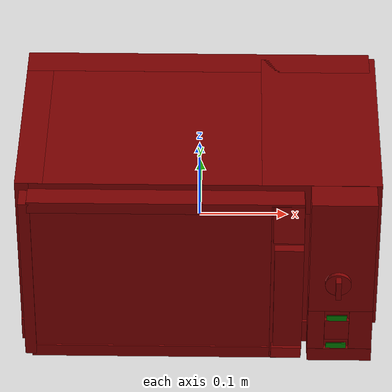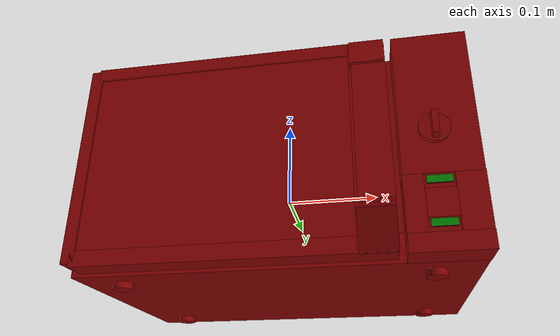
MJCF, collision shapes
<?xml version='1.0' encoding='UTF-8'?>
<mujoco model="model">
  <option timestep="0.002" gravity="0.0 0.0 -9.81"/>
  <compiler angle="radian"/>
  <asset>
    <mesh file="visuals/door.obj" name="door_vis"/>
    <mesh file="visuals/door_Clear.obj" name="door_Clear_vis"/>
    <mesh file="visuals/Body001.obj" name="Body001_vis"/>
    <mesh file="visuals/Button001.obj" name="Button001_vis"/>
    <mesh file="visuals/Button002.obj" name="Button002_vis"/>
    <mesh file="visuals/Disc001.obj" name="Disc001_vis"/>
    <mesh file="visuals/Knob001.obj" name="Knob001_vis"/>
    <texture file="visuals/T_BC001.png" name="Body001_material" type="2d"/>
    <material name="Body001_material" rgba="1 1 1 1.0" texture="Body001_material" shininess="3" specular="3"/>
    <texture file="visuals/T_BC001.png" name="door_material" type="2d"/>
    <material name="door_material" rgba="1 1 1 1.0" texture="door_material" shininess="0.4472135901451111" specular="0.3103448502657381"/>
    <material name="door_Clear_material" rgba="0.013285629451274872 0.013285629451274872 0.013285629451274872 0.800000011920929" shininess="0.5" specular="0.3103448502657381"/>
    <texture file="visuals/T_BC001.png" name="Button001_material" type="2d"/>
    <material name="Button001_material" rgba="1 1 1 1.0" texture="Button001_material" shininess="1" specular="1"/>
    <texture file="visuals/T_BC001.png" name="Button002_material" type="2d"/>
    <material name="Button002_material" rgba="1 1 1 1.0" texture="Button002_material" shininess="1" specular="1"/>
    <texture file="visuals/T_BC001.png" name="Disc001_material" type="2d"/>
    <material name="Disc001_material" rgba="1 1 1 1.0" texture="Disc001_material" shininess="0.4472135901451111" specular="0.3103448502657381"/>
    <texture file="visuals/T_BC001.png" name="Knob001_material" type="2d"/>
    <material name="Knob001_material" rgba="1 1 1 1.0" texture="Knob001_material" shininess="1" specular="1"/>
  </asset>
  <default>
    <default class="visual">
      <geom conaffinity="0" contype="0" group="1" type="mesh"/>
    </default>
    <default class="collision">
      <geom group="0" rgba="0.5 0 0 0.5"/>
    </default>
    <default class="spawn">
      <geom group="0" rgba="1 1 1 0.5" contype="0" conaffinity="0"/>
      <site group="0" rgba="1 1 1 0.5"/>
    </default>
    <default class="region">
      <geom group="1" conaffinity="0" contype="0" rgba="0 1 0 0"/>
    </default>
  </default>
  <worldbody>
    <body>
      <body name="object">
        <geom class="collision" type="cylinder" pos="-0.05001984164118767 0.015951599925756454 -0.06026212126016617" size="0.07823978364467621 0.003583983751013875" quat="1.0 0.0 0.0 0.0" name="tray" rgba="0 1 0 0.5" density="1000.0"/>
        <geom class="collision" type="box" pos="0.15466167032718658 -0.13294266164302826 -0.04180934280157089" size="0.011302554979920387 0.0005325727979652584 0.003456277772784233" quat="1.0 0.0 0.0 0.0" name="start_button" rgba="0.0 0.5 0 0.5" density="1000.0"/>
        <geom class="collision" type="box" pos="0.15466167032718658 -0.13294266164302826 -0.08195394277572632" size="0.011302554979920387 0.0005325728561729193 0.003456277772784233" quat="1.0 0.0 0.0 0.0" name="stop_button" rgba="0.0 0.5 0 0.5" density="1000.0"/>
        <geom mesh="Body001_vis" type="mesh" solimp="0.998 0.998 0.001" solref="0.001 1" friction="0.95 0.3 0.1" class="visual" material="Body001_material"/>
        <geom class="collision" type="box" pos="-0.0029855777975171804 0.027773551642894745 -0.09197510033845901" size="0.19783322513103485 0.12609513103961945 0.014489113353192806" quat="1.0 0.0 0.0 0.0" density="1000.0"/>
        <geom class="collision" type="box" pos="-0.003293383400887251 0.13578808307647705 0.017302921041846275" size="0.19752539694309235 0.018080590292811394 0.09779790043830872" quat="1.0 0.0 0.0 0.0" density="1000.0"/>
        <geom class="collision" type="box" pos="0.13506613671779633 0.02555413916707039 0.017302904278039932" size="0.06575264036655426 0.12031389027833939 0.0977979451417923" quat="1.0 0.0 0.0 0.0" density="1000.0"/>
        <geom class="collision" type="box" pos="-0.1854604035615921 0.02555413916707039 0.01730288565158844" size="0.015358394011855125 0.12031393498182297 0.09779797494411469" quat="1.0 0.0 0.0 0.0" density="1000.0"/>
        <geom class="collision" type="box" pos="-0.0007940148934721947 0.025554129853844643 0.09540653973817825" size="0.18491896986961365 0.12031400203704834 0.01968940906226635" quat="1.0 0.0 0.0 0.0" density="1000.0"/>
        <geom class="collision" type="box" pos="0.15870395302772522 -0.11240660399198532 0.0403146855533123" size="0.03581885248422623 0.017203794792294502 0.07478620857000351" quat="1.0 0.0 0.0 0.0" density="1000.0"/>
        <geom class="collision" type="box" pos="0.15899571776390076 -0.11422005295753479 -0.09805455803871155" size="0.0361105278134346 0.015928952023386955 0.00873210746794939" quat="1.0 0.0 0.0 0.0" density="1000.0"/>
        <geom class="collision" type="box" pos="0.15870395302772522 -0.11003158241510391 -0.06201816350221634" size="0.03581884503364563 0.014575290493667126 0.028315788134932518" quat="1.0 0.0 0.0 0.0" density="1000.0"/>
        <geom class="collision" type="box" pos="0.15511459112167358 -0.12691175937652588 -0.06213787943124771" size="0.013574021868407726 0.002589884214103222 0.013666123151779175" quat="1.0 0.0 0.0 0.0" density="1000.0"/>
        <geom class="collision" type="box" pos="0.13198517262935638 -0.12691175937652588 -0.06185055524110794" size="0.027608921751379967 0.002589884214103222 0.009344851598143578" quat="0.70710688829422 -4.7503021960437763e-08 0.7071066498756409 4.750300774958305e-08" density="1000.0"/>
        <geom class="collision" type="box" pos="0.18183556199073792 -0.12691175937652588 -0.06185055524110794" size="0.027608921751379967 0.002589884214103222 0.013042207807302475" quat="0.70710688829422 -4.7503021960437763e-08 0.7071066498756409 4.750300774958305e-08" density="1000.0"/>
        <geom class="collision" type="cylinder" pos="0.14959755539894104 -0.07679999619722366 -0.11150629073381424" size="0.009931103326380253 0.003350221086293459" quat="7.549790126404332e-08 1.0 -1.1102230246251565e-16 1.1102228922762585e-16" density="1000.0"/>
        <geom class="collision" type="cylinder" pos="0.14959755539894104 0.10822255164384842 -0.11150629073381424" size="0.009931103326380253 0.003350221086293459" quat="7.549790126404332e-08 1.0 -1.1102230246251565e-16 1.1102228922762585e-16" density="1000.0"/>
        <geom class="collision" type="cylinder" pos="-0.15523147583007812 -0.07679999619722366 -0.11150629073381424" size="0.009931103326380253 0.003350221086293459" quat="7.549790126404332e-08 1.0 -1.1102230246251565e-16 1.1102228922762585e-16" density="1000.0"/>
        <geom class="collision" type="cylinder" pos="-0.15523147583007812 0.10822255164384842 -0.11150629073381424" size="0.009931103326380253 0.003350221086293459" quat="7.549790126404332e-08 1.0 -1.1102230246251565e-16 1.1102228922762585e-16" density="1000.0"/>
        <body name="door">
          <joint axis="0.0 0.0 1.0" pos="-0.18660689890384674 -0.11666985601186752 0.004643640946596861" limited="true" name="microjoint" range="-1.5707963267948966 0.0" type="hinge" damping="1" frictionloss="1" armature=".01" stiffness="0.05"/>
          <geom mesh="door_vis" type="mesh" solimp="0.998 0.998 0.001" solref="0.001 1" friction="0.95 0.3 0.1" class="visual" material="door_material"/>
          <geom class="collision" type="box" pos="-0.03512832894921303 -0.11667750775814056 0.10810127854347229" size="0.15058554708957672 0.012316628359258175 0.006999634671956301" quat="1.0 0.0 0.0 0.0" density="1000.0"/>
          <geom class="collision" type="box" pos="-0.18863849341869354 -0.11667750775814056 0.005684745963662863" size="0.0063014039769768715 0.012316619977355003 0.10709228366613388" quat="1.0 0.0 0.0 0.0" density="1000.0"/>
          <geom class="collision" type="box" pos="-0.035753775388002396 -0.11667750775814056 -0.09674002975225449" size="0.1513035148382187 0.012316622771322727 0.007857415825128555" quat="1.0 0.0 0.0 0.0" density="1000.0"/>
          <geom class="collision" type="box" pos="0.09808044880628586 -0.11697404086589813 0.005684745963662863" size="0.017996691167354584 0.012316625565290451 0.10709238797426224" quat="1.0 0.0 0.0 0.0" density="1000.0"/>
          <geom class="collision" type="box" pos="0.09866852313280106 -0.13735562562942505 0.09426739811897278" size="0.016744639724493027 0.0033592733088880777 0.020090369507670403" quat="0.9781920909881592 -0.20770232379436493 -4.611917712020824e-17 4.8662573100895286e-24" density="1000.0"/>
          <geom class="collision" type="box" pos="0.09849205613136292 -0.13644085824489594 -0.0865524634718895" size="0.016744639724493027 0.003359273774549365 0.020090369507670403" quat="0.27955159544944763 -0.9601306915283203 -2.13191840076803e-16 1.6583355063465588e-24" density="1000.0"/>
          <geom class="collision" type="box" pos="0.09937436133623123 -0.1483328938484192 0.003095160238444805" size="0.015876753255724907 0.005248647648841143 0.06787600368261337" quat="1.0 0.0 0.0 2.2198952131368018e-16" name="door_handle_main" density="1000.0"/>
          <geom class="collision" type="box" pos="-0.037605028599500656 -0.12475860863924026 0.006506004370748997" size="0.1486547291278839 0.0024507292546331882 0.10685575753450394" quat="1.0 0.0 0.0 0.0" name="door_main" density="1000.0"/>
          <body name="door_Clear">
            <geom mesh="door_Clear_vis" type="mesh" solimp="0.998 0.998 0.001" solref="0.001 1" friction="0.95 0.3 0.1" class="visual" material="door_Clear_material"/>
            <geom class="collision" type="box" pos="-0.05464530736207962 -0.11821382492780685 0.0038154348731040955" size="0.13399672508239746 0.008547766134142876 0.09639931470155716" quat="1.0 0.0 0.0 0.0" density="1000.0"/>
          </body>
        </body>
        <body name="Button001">
          <joint axis="0.0 1.0 0.0" pos="0.15466167032718658 -0.13166409730911255 -0.04180934280157089" limited="true" name="Button001_joint" range="0.0 0.002" type="slide" damping="1" frictionloss="1" armature=".01" stiffness="0.05"/>
          <geom mesh="Button001_vis" type="mesh" solimp="0.998 0.998 0.001" solref="0.001 1" friction="0.95 0.3 0.1" class="visual" material="Button001_material"/>
          <geom class="collision" type="box" pos="0.15466167032718658 -0.1311846375465393 -0.04180934280157089" size="0.011302554979920387 0.0005449827294796705 0.0034562810324132442" quat="1.0 0.0 0.0 0.0" density="1000.0"/>
        </body>
        <body name="Button002">
          <joint axis="0.0 1.0 0.0" pos="0.15466167032718658 -0.13166409730911255 -0.08195394277572632" limited="true" name="Button002_joint" range="0.0 0.002" type="slide" damping="1" frictionloss="1" armature=".01" stiffness="0.05"/>
          <geom mesh="Button002_vis" type="mesh" solimp="0.998 0.998 0.001" solref="0.001 1" friction="0.95 0.3 0.1" class="visual" material="Button002_material"/>
          <geom class="collision" type="box" pos="0.15466167032718658 -0.1311846375465393 -0.08195394277572632" size="0.011302554979920387 0.0005449828458949924 0.0034562810324132442" quat="1.0 0.0 0.0 0.0" density="1000.0"/>
        </body>
        <body name="Disc001">
          <joint axis="0.0 0.0 1.0" pos="-0.050349991768598557 0.01555827260017395 -0.06831318885087967" limited="false" name="Disc001_joint" range="0 360" type="hinge" damping="1" frictionloss="1" armature=".01" stiffness="0.05"/>
          <geom mesh="Disc001_vis" type="mesh" solimp="0.998 0.998 0.001" solref="0.001 1" friction="0.95 0.3 0.1" class="visual" material="Disc001_material"/>
          <geom class="collision" type="cylinder" pos="-0.05001984164118767 0.015951599925756454 -0.0686841532588005" size="0.07758492231369019 0.0017325424123555422" quat="1.0 0.0 0.0 0.0" density="1000.0"/>
        </body>
        <body name="Knob001">
          <joint axis="0.0 1.0 0.0" pos="0.15466167032718658 -0.1382395625114441 0.008507432416081429" limited="true" name="Knob001_joint" range="0.0 5.235987755982989" type="hinge" damping="0.05" frictionloss="0.1" armature=".01"/>
          <geom mesh="Knob001_vis" type="mesh" solimp="0.998 0.998 0.001" solref="0.001 1" friction="0.95 0.3 0.1" class="visual" material="Knob001_material"/>
          <geom class="collision" type="cylinder" pos="0.15466167032718658 -0.13365328311920166 0.008507433347404003" size="0.014389256946742535 0.0025139807257801294" quat="0.7071068286895752 0.7071067690849304 0.0 0.0" density="1000.0"/>
          <geom class="collision" type="box" pos="0.15466167032718658 -0.14123767614364624 0.008507433347404003" size="0.002936118748039007 0.005597642622888088 0.011648640967905521" quat="1.0 0.0 0.0 0.0" density="1000.0"/>
        </body>
        <geom class="region" name="reg_int" type="box" pos="-0.05028693750500679 0.009592942893505096 -0.0009588040411472321" size="0.11979503557085991 0.10811445862054825 0.07655945047736168"/>
        <geom class="region" name="reg_main" type="box" pos="0.0 0.011859849095344543 0.0" size="0.20081877708435059 0.14200882613658905 0.11510089784860611"/>
      </body>
    </body>
  </worldbody>
  <actuator>
    <motor name="microjoint_actuator" joint="microjoint" gear="10"/>
    <motor name="Button001_joint_actuator" joint="Button001_joint" gear="0.1"/>
    <motor name="Button002_joint_actuator" joint="Button002_joint" gear="0.1"/>
    <motor name="Disc001_joint_actuator" joint="Disc001_joint" gear="10"/>
    <motor name="Knob001_joint_actuator" joint="Knob001_joint" gear="10"/>
  </actuator>
</mujoco>
